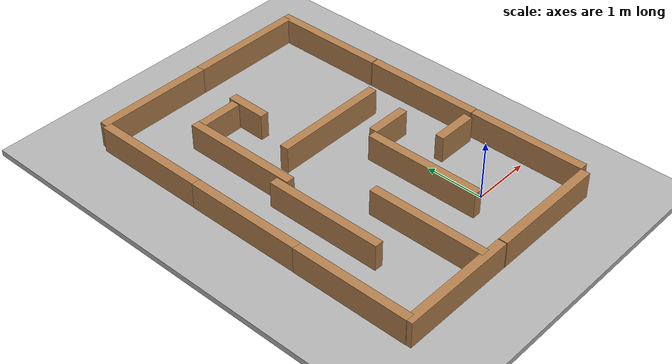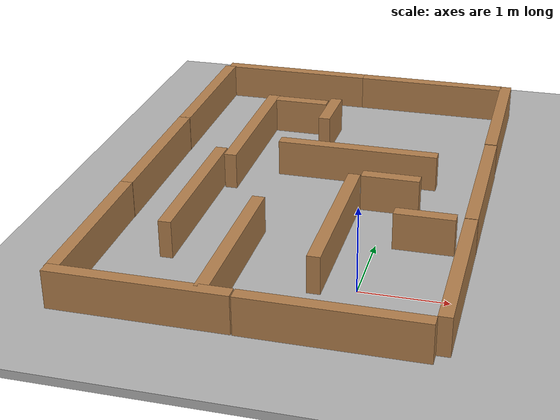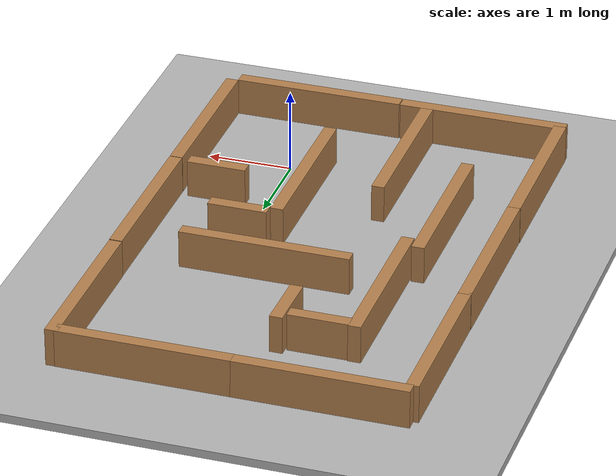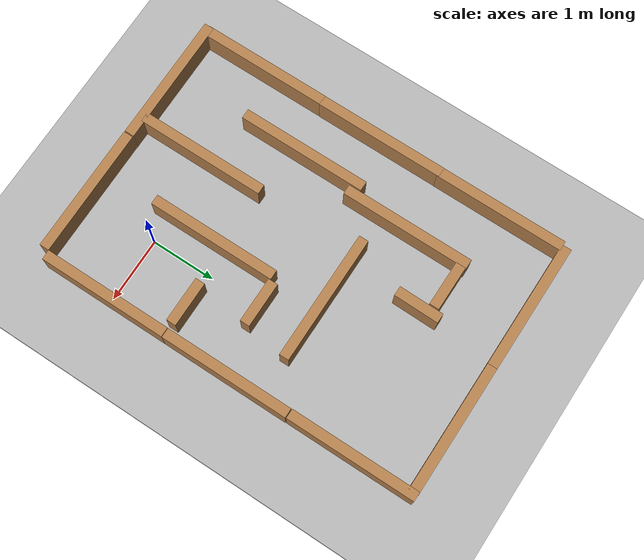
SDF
<sdf version="1.7">
 <world name="default">
  <light name="sun" type="directional">
   <pose>0 0 10 0 -0 0</pose>
   <diffuse>0.8 0.8 0.8 1</diffuse>
   <specular>0.2 0.2 0.2 1</specular>
   <attenuation>
    <range>1000</range>
    <constant>0.9</constant>
    <linear>0.01</linear>
    <quadratic>0.001</quadratic>
   </attenuation>
   <direction>-0.5 0.1 -0.9</direction>
   <spot><inner_angle>0</inner_angle><outer_angle>0</outer_angle><falloff>0</falloff></spot>
  </light>
  <model name="ground_plane">
   <static>1</static>
   <link name="link">
    <collision name="collision">
     <geometry><plane><normal>0 0 1</normal><size>100 100</size></plane></geometry>
     <surface>
      <contact><collide_bitmask>65535</collide_bitmask></contact>
      <friction><ode><mu>100</mu><mu2>50</mu2></ode></friction>
     </surface>
    </collision>
    <visual name="visual">
     <cast_shadows>0</cast_shadows>
     <geometry><plane><normal>0 0 1</normal><size>100 100</size></plane></geometry>
     <material>
      <script><uri>file://media/materials/scripts/gazebo.material</uri><name>Gazebo/Grey</name></script>
     </material>
    </visual>
   </link>
  </model>
  <gravity>0 0 -9.8</gravity>
  <magnetic_field>6e-06 2.3e-05 -4.2e-05</magnetic_field>
  <atmosphere type="adiabatic"/>
  <physics type="ode">
   <max_step_size>0.001</max_step_size>
   <real_time_factor>1</real_time_factor>
   <real_time_update_rate>1000</real_time_update_rate>
  </physics>
  <scene><ambient>0.4 0.4 0.4 1</ambient><background>0.7 0.7 0.7 1</background><shadows>1</shadows></scene>
  <spherical_coordinates>
   <surface_model>EARTH_WGS84</surface_model>
   <latitude_deg>0</latitude_deg>
   <longitude_deg>0</longitude_deg>
   <elevation>0</elevation>
   <heading_deg>0</heading_deg>
  </spherical_coordinates>
  <model name="wall_2m">
   <pose>0.553877 0.97532 0 0 -0 0</pose>
   <link name="Wall_0">
    <collision name="Wall_0_Collision">
     <geometry><box><size>0.7 0.15 0.5</size></box></geometry>
     <pose>0 0 0.25 0 -0 0</pose>
    </collision>
    <visual name="Wall_0_Visual">
     <pose>0 0 0.25 0 -0 0</pose>
     <geometry><box><size>0.7 0.15 0.5</size></box></geometry>
     <material>
      <script><uri>file://media/materials/scripts/gazebo.material</uri><name>Gazebo/Wood</name></script>
      <ambient>1 1 1 1</ambient>
     </material>
     <meta><layer>0</layer></meta>
    </visual>
   </link>
   <static>1</static>
  </model>
  <model name="wall_2m_0">
   <pose>-2.02195 -1.09512 0 0 -0 0</pose>
   <link name="Wall_0">
    <collision name="Wall_0_Collision">
     <geometry><box><size>2 0.15 0.5</size></box></geometry>
     <pose>0 0 0.25 0 -0 0</pose>
    </collision>
    <visual name="Wall_0_Visual">
     <pose>0 0 0.25 0 -0 0</pose>
     <geometry><box><size>2 0.15 0.5</size></box></geometry>
     <material>
      <script><uri>file://media/materials/scripts/gazebo.material</uri><name>Gazebo/Wood</name></script>
      <ambient>1 1 1 1</ambient>
     </material>
     <meta><layer>0</layer></meta>
    </visual>
   </link>
   <static>1</static>
  </model>
  <model name="wall_2m_1">
   <pose>-0.007279 -1.09772 0 0 -0 0</pose>
   <link name="Wall_0">
    <collision name="Wall_0_Collision">
     <geometry><box><size>2 0.15 0.5</size></box></geometry>
     <pose>0 0 0.25 0 -0 0</pose>
    </collision>
    <visual name="Wall_0_Visual">
     <pose>0 0 0.25 0 -0 0</pose>
     <geometry><box><size>2 0.15 0.5</size></box></geometry>
     <material>
      <script><uri>file://media/materials/scripts/gazebo.material</uri><name>Gazebo/Wood</name></script>
      <ambient>1 1 1 1</ambient>
     </material>
     <meta><layer>0</layer></meta>
    </visual>
   </link>
   <static>1</static>
  </model>
  <model name="wall_2m_2">
   <pose>1.06306 -0.0198 0 0 -0 1.57223</pose>
   <link name="Wall_0">
    <collision name="Wall_0_Collision">
     <geometry><box><size>2 0.15 0.5</size></box></geometry>
     <pose>0 0 0.25 0 -0 0</pose>
    </collision>
    <visual name="Wall_0_Visual">
     <pose>0 0 0.25 0 -0 0</pose>
     <geometry><box><size>2 0.15 0.5</size></box></geometry>
     <material>
      <script><uri>file://media/materials/scripts/gazebo.material</uri><name>Gazebo/Wood</name></script>
      <ambient>1 1 1 1</ambient>
     </material>
     <meta><layer>0</layer></meta>
    </visual>
   </link>
   <static>1</static>
  </model>
  <model name="wall_2m_2_clone">
   <pose>-0.418311 0.769102 0 0 -0 1.57223</pose>
   <link name="Wall_0">
    <collision name="Wall_0_Collision">
     <geometry><box><size>2 0.15 0.5</size></box></geometry>
     <pose>0 0 0.25 0 -0 0</pose>
    </collision>
    <visual name="Wall_0_Visual">
     <pose>0 0 0.25 0 -0 0</pose>
     <geometry><box><size>2 0.15 0.5</size></box></geometry>
     <material>
      <script><uri>file://media/materials/scripts/gazebo.material</uri><name>Gazebo/Wood</name></script>
      <ambient>1 1 1 1</ambient>
     </material>
     <meta><layer>0</layer></meta>
    </visual>
   </link>
   <static>1</static>
  </model>
  <model name="wall_2m_2_clone_0">
   <pose>1.06027 1.98815 0 0 -0 1.57223</pose>
   <link name="Wall_0">
    <collision name="Wall_0_Collision">
     <geometry><box><size>2 0.15 0.5</size></box></geometry>
     <pose>0 0 0.25 0 -0 0</pose>
    </collision>
    <visual name="Wall_0_Visual">
     <pose>0 0 0.25 0 -0 0</pose>
     <geometry><box><size>2 0.15 0.5</size></box></geometry>
     <material>
      <script><uri>file://media/materials/scripts/gazebo.material</uri><name>Gazebo/Wood</name></script>
      <ambient>1 1 1 1</ambient>
     </material>
     <meta><layer>0</layer></meta>
    </visual>
   </link>
   <static>1</static>
  </model>
  <model name="wall_2m_2_clone_1">
   <pose>1.05241 4.00152 0 0 -0 1.57223</pose>
   <link name="Wall_0">
    <collision name="Wall_0_Collision">
     <geometry><box><size>2 0.15 0.5</size></box></geometry>
     <pose>0 0 0.25 0 -0 0</pose>
    </collision>
    <visual name="Wall_0_Visual">
     <pose>0 0 0.25 0 -0 0</pose>
     <geometry><box><size>2 0.15 0.5</size></box></geometry>
     <material>
      <script><uri>file://media/materials/scripts/gazebo.material</uri><name>Gazebo/Wood</name></script>
      <ambient>1 1 1 1</ambient>
     </material>
     <meta><layer>0</layer></meta>
    </visual>
   </link>
   <static>1</static>
  </model>
  <model name="wall_2m_2_clone_2">
   <pose>-2.95384 -0.081889 0 0 -0 1.57223</pose>
   <link name="Wall_0">
    <collision name="Wall_0_Collision">
     <geometry><box><size>2 0.15 0.5</size></box></geometry>
     <pose>0 0 0.25 0 -0 0</pose>
    </collision>
    <visual name="Wall_0_Visual">
     <pose>0 0 0.25 0 -0 0</pose>
     <geometry><box><size>2 0.15 0.5</size></box></geometry>
     <material>
      <script><uri>file://media/materials/scripts/gazebo.material</uri><name>Gazebo/Wood</name></script>
      <ambient>1 1 1 1</ambient>
     </material>
     <meta><layer>0</layer></meta>
    </visual>
   </link>
   <static>1</static>
  </model>
  <model name="wall_2m_2_clone_3">
   <pose>-2.95384 1.9079 0 0 -0 1.57223</pose>
   <link name="Wall_0">
    <collision name="Wall_0_Collision">
     <geometry><box><size>2 0.15 0.5</size></box></geometry>
     <pose>0 0 0.25 0 -0 0</pose>
    </collision>
    <visual name="Wall_0_Visual">
     <pose>0 0 0.25 0 -0 0</pose>
     <geometry><box><size>2 0.15 0.5</size></box></geometry>
     <material>
      <script><uri>file://media/materials/scripts/gazebo.material</uri><name>Gazebo/Wood</name></script>
      <ambient>1 1 1 1</ambient>
     </material>
     <meta><layer>0</layer></meta>
    </visual>
   </link>
   <static>1</static>
  </model>
  <model name="wall_2m_2_clone_4">
   <pose>-2.95383 3.87409 0 0 -0 1.57223</pose>
   <link name="Wall_0">
    <collision name="Wall_0_Collision">
     <geometry><box><size>2 0.15 0.5</size></box></geometry>
     <pose>0 0 0.25 0 -0 0</pose>
    </collision>
    <visual name="Wall_0_Visual">
     <pose>0 0 0.25 0 -0 0</pose>
     <geometry><box><size>2 0.15 0.5</size></box></geometry>
     <material>
      <script><uri>file://media/materials/scripts/gazebo.material</uri><name>Gazebo/Wood</name></script>
      <ambient>1 1 1 1</ambient>
     </material>
     <meta><layer>0</layer></meta>
    </visual>
   </link>
   <static>1</static>
  </model>
  <model name="wall_2m_0_clone">
   <pose>-1.97094 4.93049 0 0 -0 0</pose>
   <link name="Wall_0">
    <collision name="Wall_0_Collision">
     <geometry><box><size>2 0.15 0.5</size></box></geometry>
     <pose>0 0 0.25 0 -0 0</pose>
    </collision>
    <visual name="Wall_0_Visual">
     <pose>0 0 0.25 0 -0 0</pose>
     <geometry><box><size>2 0.15 0.5</size></box></geometry>
     <material>
      <script><uri>file://media/materials/scripts/gazebo.material</uri><name>Gazebo/Wood</name></script>
      <ambient>1 1 1 1</ambient>
     </material>
     <meta><layer>0</layer></meta>
    </visual>
   </link>
   <static>1</static>
  </model>
  <model name="wall_2m_0_clone_0">
   <pose>0.020959 4.93049 0 0 -0 0</pose>
   <link name="Wall_0">
    <collision name="Wall_0_Collision">
     <geometry><box><size>2 0.15 0.5</size></box></geometry>
     <pose>0 0 0.25 0 -0 0</pose>
    </collision>
    <visual name="Wall_0_Visual">
     <pose>0 0 0.25 0 -0 0</pose>
     <geometry><box><size>2 0.15 0.5</size></box></geometry>
     <material>
      <script><uri>file://media/materials/scripts/gazebo.material</uri><name>Gazebo/Wood</name></script>
      <ambient>1 1 1 1</ambient>
     </material>
     <meta><layer>0</layer></meta>
    </visual>
   </link>
   <static>1</static>
  </model>
  <model name="wall_2m_clone">
   <pose>0.012522 1.81603 0 0 -0 0</pose>
   <link name="Wall_0">
    <collision name="Wall_0_Collision">
     <geometry><box><size>0.7 0.15 0.5</size></box></geometry>
     <pose>0 0 0.25 0 -0 0</pose>
    </collision>
    <visual name="Wall_0_Visual">
     <pose>0 0 0.25 0 -0 0</pose>
     <geometry><box><size>0.7 0.15 0.5</size></box></geometry>
     <material>
      <script><uri>file://media/materials/scripts/gazebo.material</uri><name>Gazebo/Wood</name></script>
      <ambient>1 1 1 1</ambient>
     </material>
     <meta><layer>0</layer></meta>
    </visual>
   </link>
   <static>1</static>
  </model>
  <model name="wall_2m_clone_clone">
   <pose>-1.59984 3.84124 0 0 -0 0</pose>
   <link name="Wall_0">
    <collision name="Wall_0_Collision">
     <geometry><box><size>0.7 0.15 0.5</size></box></geometry>
     <pose>0 0 0.25 0 -0 0</pose>
    </collision>
    <visual name="Wall_0_Visual">
     <pose>0 0 0.25 0 -0 0</pose>
     <geometry><box><size>0.7 0.15 0.5</size></box></geometry>
     <material>
      <script><uri>file://media/materials/scripts/gazebo.material</uri><name>Gazebo/Wood</name></script>
      <ambient>1 1 1 1</ambient>
     </material>
     <meta><layer>0</layer></meta>
    </visual>
   </link>
   <static>1</static>
  </model>
  <model name="wall_2m_clone_clone_0">
   <pose>-1.15836 3.65167 0 0 0 -1.58233</pose>
   <link name="Wall_0">
    <collision name="Wall_0_Collision">
     <geometry><box><size>0.7 0.15 0.5</size></box></geometry>
     <pose>0 0 0.25 0 -0 0</pose>
    </collision>
    <visual name="Wall_0_Visual">
     <pose>0 0 0.25 0 -0 0</pose>
     <geometry><box><size>0.7 0.15 0.5</size></box></geometry>
     <material>
      <script><uri>file://media/materials/scripts/gazebo.material</uri><name>Gazebo/Wood</name></script>
      <ambient>1 1 1 1</ambient>
     </material>
     <meta><layer>0</layer></meta>
    </visual>
   </link>
   <static>1</static>
  </model>
  <model name="wall_2m_0_clone_0_clone">
   <pose>-0.540172 2.52 0 0 -0 0</pose>
   <link name="Wall_0">
    <collision name="Wall_0_Collision">
     <geometry><box><size>2 0.15 0.5</size></box></geometry>
     <pose>0 0 0.25 0 -0 0</pose>
    </collision>
    <visual name="Wall_0_Visual">
     <pose>0 0 0.25 0 -0 0</pose>
     <geometry><box><size>2 0.15 0.5</size></box></geometry>
     <material>
      <script><uri>file://media/materials/scripts/gazebo.material</uri><name>Gazebo/Wood</name></script>
      <ambient>1 1 1 1</ambient>
     </material>
     <meta><layer>0</layer></meta>
    </visual>
   </link>
   <static>1</static>
  </model>
  <model name="wall_2m_2_clone_clone">
   <pose>-2.01565 2.92694 0 0 -0 1.57223</pose>
   <link name="Wall_0">
    <collision name="Wall_0_Collision">
     <geometry><box><size>2 0.15 0.5</size></box></geometry>
     <pose>0 0 0.25 0 -0 0</pose>
    </collision>
    <visual name="Wall_0_Visual">
     <pose>0 0 0.25 0 -0 0</pose>
     <geometry><box><size>2 0.15 0.5</size></box></geometry>
     <material>
      <script><uri>file://media/materials/scripts/gazebo.material</uri><name>Gazebo/Wood</name></script>
      <ambient>1 1 1 1</ambient>
     </material>
     <meta><layer>0</layer></meta>
    </visual>
   </link>
   <static>1</static>
  </model>
  <model name="wall_2m_2_clone_2_clone">
   <pose>-1.35212 -0.064482 0 0 -0 1.57223</pose>
   <link name="Wall_0">
    <collision name="Wall_0_Collision">
     <geometry><box><size>2 0.15 0.5</size></box></geometry>
     <pose>0 0 0.25 0 -0 0</pose>
    </collision>
    <visual name="Wall_0_Visual">
     <pose>0 0 0.25 0 -0 0</pose>
     <geometry><box><size>2 0.15 0.5</size></box></geometry>
     <material>
      <script><uri>file://media/materials/scripts/gazebo.material</uri><name>Gazebo/Wood</name></script>
      <ambient>1 1 1 1</ambient>
     </material>
     <meta><layer>0</layer></meta>
    </visual>
   </link>
   <static>1</static>
  </model>
  <model name="wall_2m_2_clone_2_clone_0">
   <pose>-2.17989 1.10563 0 0 -0 1.57223</pose>
   <link name="Wall_0">
    <collision name="Wall_0_Collision">
     <geometry><box><size>2 0.15 0.5</size></box></geometry>
     <pose>0 0 0.25 0 -0 0</pose>
    </collision>
    <visual name="Wall_0_Visual">
     <pose>0 0 0.25 0 -0 0</pose>
     <geometry><box><size>2 0.15 0.5</size></box></geometry>
     <material>
      <script><uri>file://media/materials/scripts/gazebo.material</uri><name>Gazebo/Wood</name></script>
      <ambient>1 1 1 1</ambient>
     </material>
     <meta><layer>0</layer></meta>
    </visual>
   </link>
   <static>1</static>
  </model>
  <model name="ground_plane_0">
   <static>1</static>
   <link name="link">
    <collision name="collision">
     <geometry><plane><normal>0 0 1</normal><size>100 100</size></plane></geometry>
     <surface><friction><ode><mu>100</mu><mu2>50</mu2></ode></friction></surface>
    </collision>
    <visual name="visual">
     <cast_shadows>0</cast_shadows>
     <geometry><plane><normal>0 0 1</normal><size>100 100</size></plane></geometry>
     <material>
      <ambient>0.3 0.3 0.3 1</ambient>
      <diffuse>0.7 0.7 0.7 1</diffuse>
      <specular>0.01 0.01 0.01 1</specular>
     </material>
    </visual>
   </link>
   <pose>-3.61306 9.58607 0 0 -0 0</pose>
  </model>
 </world>
</sdf>
